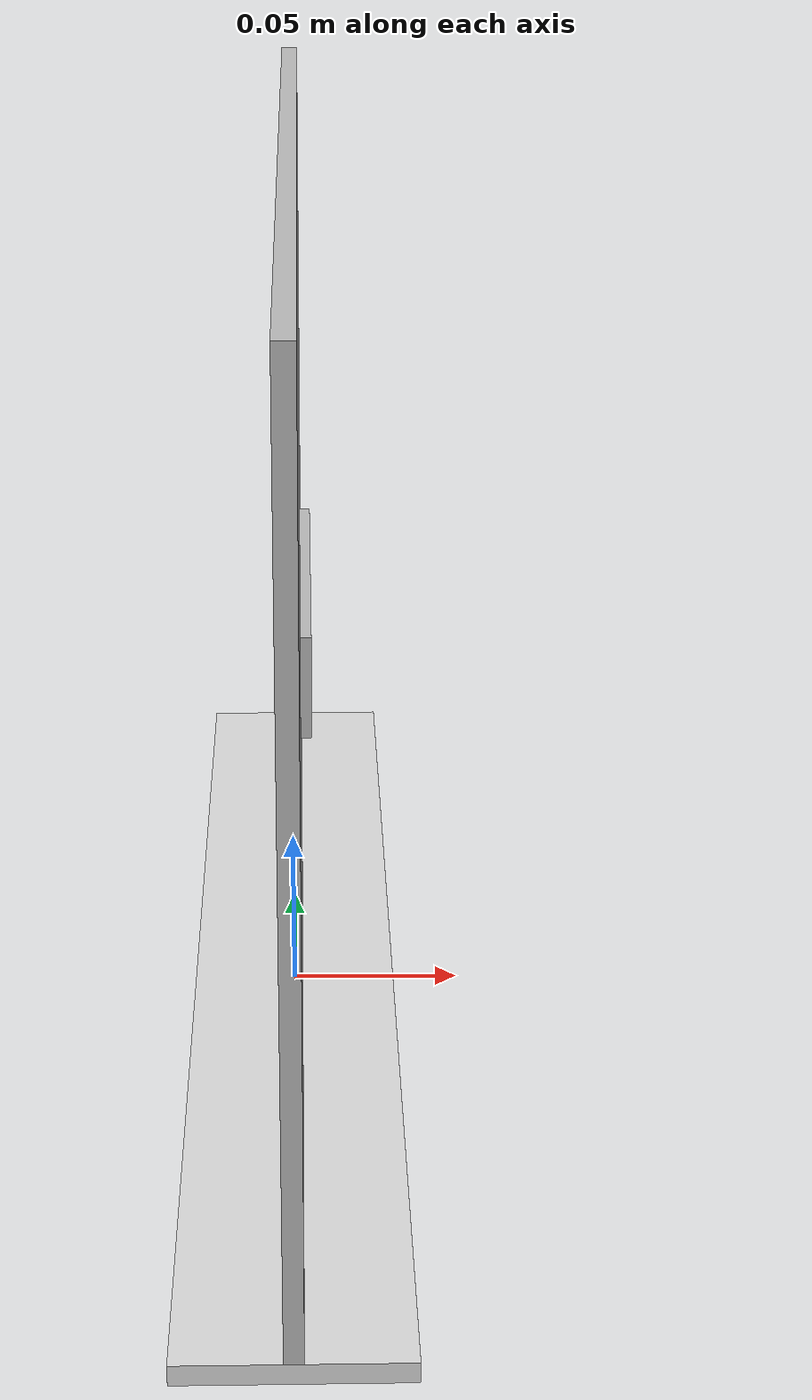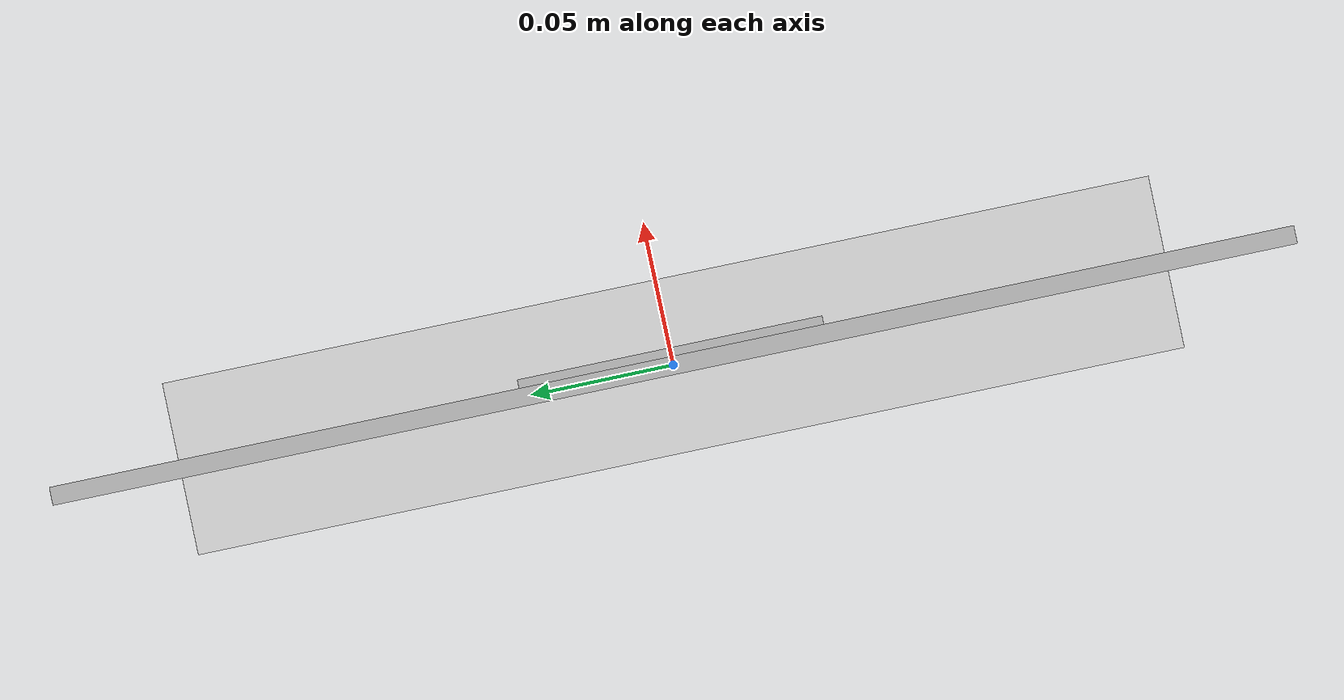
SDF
<?xml version="1.0"?>
<sdf version="1.7">
  <model name="car_2">
    <!-- 车辆立牌 + 车牌 (陕W·5QG5S)
         车板 0.345 x 0.250 x 0.005 m (官方 34.5 x 25 cm x 5mm)
         车牌 0.095 x 0.030 m (官方 9.5 x 3 cm), 贴在正面后保险杠中间 -->
    <static>true</static>
    <link name="link">
      <visual name="body">
        <pose>0 0 0.1310 0 0 0</pose>
        <geometry><box><size>0.0050 0.3450 0.2500</size></box></geometry>
        <material><script>
          <uri>model://car_2/materials/scripts</uri>
          <uri>model://car_2/materials/textures</uri>
          <name>Car/Body_car_2</name>
        </script></material>
      </visual>
      <visual name="plate">
        <pose>0.0040 0.0000 0.1225 0 0 0</pose>
        <geometry><box><size>0.0030 0.0950 0.0300</size></box></geometry>
        <material><script>
          <uri>model://car_2/materials/scripts</uri>
          <uri>model://car_2/materials/textures</uri>
          <name>Car/Plate_car_2</name>
        </script></material>
      </visual>
      <visual name="base">
        <pose>0 0 0.0030 0 0 0</pose>
        <geometry><box><size>0.060 0.3450 0.0060</size></box></geometry>
        <material><ambient>0.85 0.85 0.85 1</ambient><diffuse>0.85 0.85 0.85 1</diffuse></material>
      </visual>
      <collision name="col">
        <pose>0 0 0.1310 0 0 0</pose>
        <geometry><box><size>0.0050 0.3450 0.2500</size></box></geometry>
      </collision>
      <collision name="base_c">
        <pose>0 0 0.0030 0 0 0</pose>
        <geometry><box><size>0.060 0.3450 0.0060</size></box></geometry>
      </collision>
    </link>
  </model>
</sdf>
